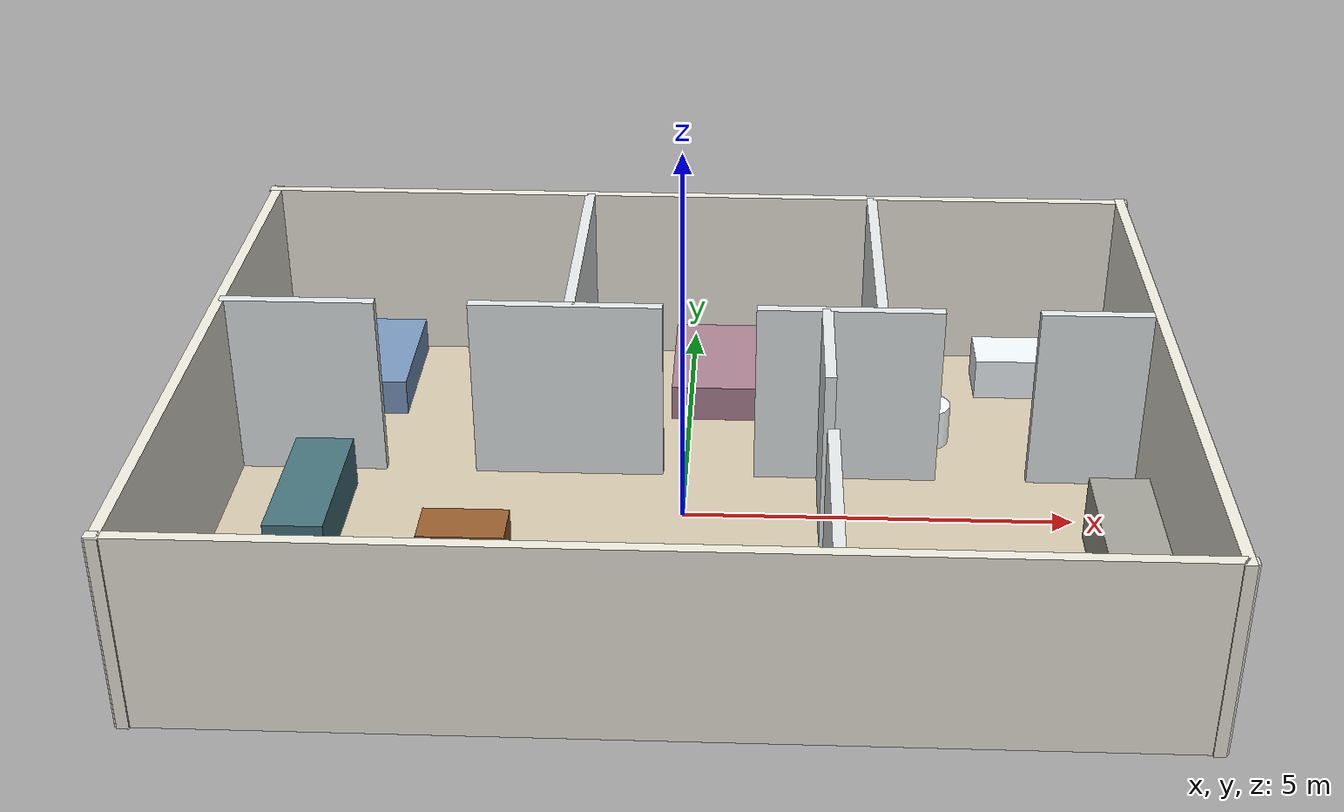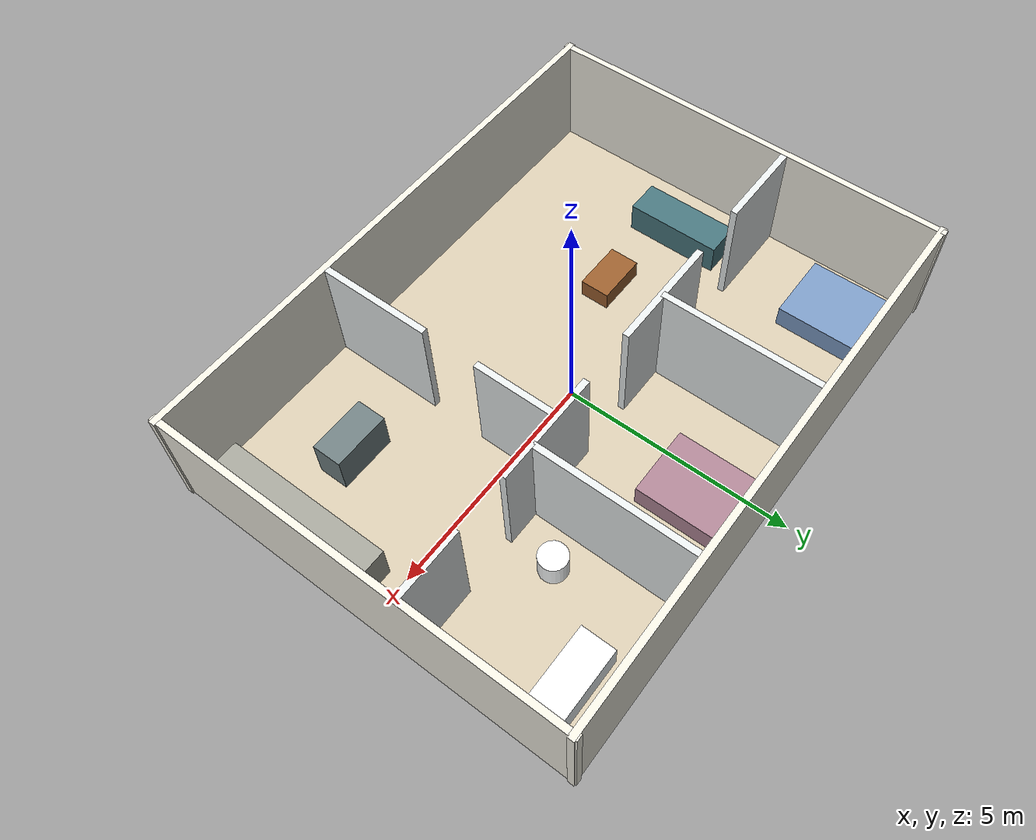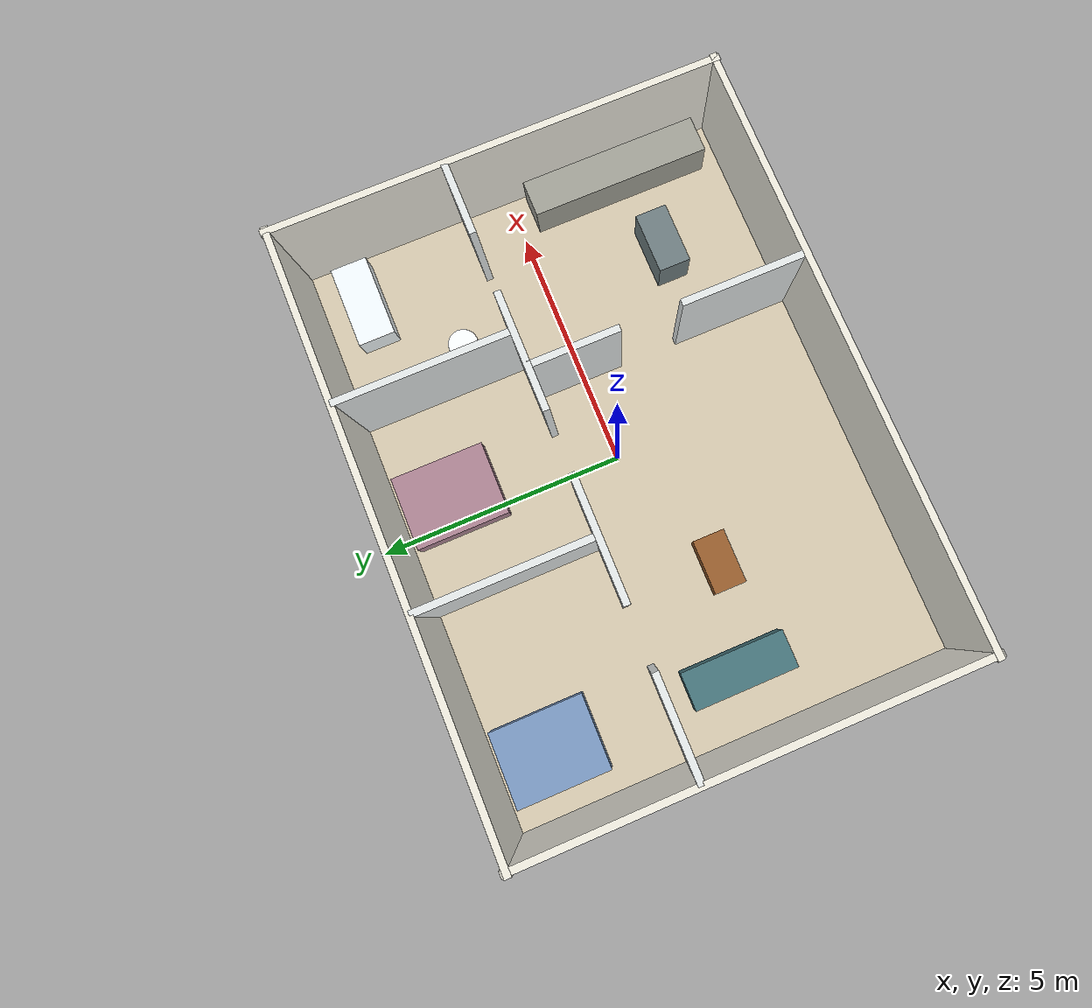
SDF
<?xml version="1.0"?>
<sdf version="1.6">
  <world name="quick_indoor_apartment">
    <include><uri>model://sun</uri></include>

    <physics name="ode_physics" default="1" type="ode">
      <max_step_size>0.001</max_step_size>
      <real_time_factor>1.0</real_time_factor>
      <real_time_update_rate>1000</real_time_update_rate>
    </physics>

    <scene>
      <ambient>0.72 0.72 0.72 1</ambient>
      <background>0.82 0.88 0.93 1</background>
      <shadows>true</shadows>
    </scene>

    <light name="home_fill" type="point">
      <pose>0 0 3.0 0 0 0</pose>
      <diffuse>1.0 0.94 0.84 1</diffuse>
      <specular>0.2 0.2 0.2 1</specular>
      <attenuation><range>14</range><constant>0.55</constant><linear>0.02</linear><quadratic>0.006</quadratic></attenuation>
    </light>

    <model name="quick_home">
      <static>true</static>

      <link name="floor">
        <pose>0 0 0 0 0 0</pose>
        <collision name="collision"><geometry><box><size>12 9 0.04</size></box></geometry></collision>
        <visual name="visual"><geometry><box><size>12 9 0.04</size></box></geometry><material><ambient>0.72 0.67 0.58 1</ambient><diffuse>0.84 0.79 0.69 1</diffuse></material></visual>
      </link>

      <!-- Outer shell. -->
      <link name="wall_n"><pose>0 4.5 1.25 0 0 0</pose><collision name="collision"><geometry><box><size>12.2 0.14 2.5</size></box></geometry></collision><visual name="visual"><geometry><box><size>12.2 0.14 2.5</size></box></geometry><material><ambient>0.84 0.83 0.78 1</ambient><diffuse>0.94 0.93 0.88 1</diffuse></material></visual></link>
      <link name="wall_s"><pose>0 -4.5 1.25 0 0 0</pose><collision name="collision"><geometry><box><size>12.2 0.14 2.5</size></box></geometry></collision><visual name="visual"><geometry><box><size>12.2 0.14 2.5</size></box></geometry><material><ambient>0.84 0.83 0.78 1</ambient><diffuse>0.94 0.93 0.88 1</diffuse></material></visual></link>
      <link name="wall_w"><pose>-6 0 1.25 0 0 0</pose><collision name="collision"><geometry><box><size>0.14 9.2 2.5</size></box></geometry></collision><visual name="visual"><geometry><box><size>0.14 9.2 2.5</size></box></geometry><material><ambient>0.84 0.83 0.78 1</ambient><diffuse>0.94 0.93 0.88 1</diffuse></material></visual></link>
      <link name="wall_e"><pose>6 0 1.25 0 0 0</pose><collision name="collision"><geometry><box><size>0.14 9.2 2.5</size></box></geometry></collision><visual name="visual"><geometry><box><size>0.14 9.2 2.5</size></box></geometry><material><ambient>0.84 0.83 0.78 1</ambient><diffuse>0.94 0.93 0.88 1</diffuse></material></visual></link>

      <!-- Wide 1.2 m door openings into both bedrooms and the bathroom. -->
      <link name="north_split_1"><pose>-5.0 1.0 1.25 0 0 0</pose><collision name="collision"><geometry><box><size>2.0 0.14 2.5</size></box></geometry></collision><visual name="visual"><geometry><box><size>2.0 0.14 2.5</size></box></geometry><material><ambient>0.80 0.82 0.82 1</ambient><diffuse>0.90 0.92 0.92 1</diffuse></material></visual></link>
      <link name="north_split_2"><pose>-1.55 1.0 1.25 0 0 0</pose><collision name="collision"><geometry><box><size>2.5 0.14 2.5</size></box></geometry></collision><visual name="visual"><geometry><box><size>2.5 0.14 2.5</size></box></geometry><material><ambient>0.80 0.82 0.82 1</ambient><diffuse>0.90 0.92 0.92 1</diffuse></material></visual></link>
      <link name="north_split_3"><pose>2.1 1.0 1.25 0 0 0</pose><collision name="collision"><geometry><box><size>2.4 0.14 2.5</size></box></geometry></collision><visual name="visual"><geometry><box><size>2.4 0.14 2.5</size></box></geometry><material><ambient>0.80 0.82 0.82 1</ambient><diffuse>0.90 0.92 0.92 1</diffuse></material></visual></link>
      <link name="north_split_4"><pose>5.25 1.0 1.25 0 0 0</pose><collision name="collision"><geometry><box><size>1.5 0.14 2.5</size></box></geometry></collision><visual name="visual"><geometry><box><size>1.5 0.14 2.5</size></box></geometry><material><ambient>0.80 0.82 0.82 1</ambient><diffuse>0.90 0.92 0.92 1</diffuse></material></visual></link>
      <link name="bedroom_split"><pose>-1.5 2.75 1.25 0 0 0</pose><collision name="collision"><geometry><box><size>0.14 3.5 2.5</size></box></geometry></collision><visual name="visual"><geometry><box><size>0.14 3.5 2.5</size></box></geometry><material><ambient>0.80 0.82 0.82 1</ambient><diffuse>0.90 0.92 0.92 1</diffuse></material></visual></link>
      <link name="bath_split"><pose>2.5 2.75 1.25 0 0 0</pose><collision name="collision"><geometry><box><size>0.14 3.5 2.5</size></box></geometry></collision><visual name="visual"><geometry><box><size>0.14 3.5 2.5</size></box></geometry><material><ambient>0.80 0.82 0.82 1</ambient><diffuse>0.90 0.92 0.92 1</diffuse></material></visual></link>

      <!-- Kitchen divider with a wide doorway. -->
      <link name="kitchen_split_s"><pose>1.8 -3.25 1.25 0 0 0</pose><collision name="collision"><geometry><box><size>0.14 2.5 2.5</size></box></geometry></collision><visual name="visual"><geometry><box><size>0.14 2.5 2.5</size></box></geometry><material><ambient>0.80 0.82 0.82 1</ambient><diffuse>0.90 0.92 0.92 1</diffuse></material></visual></link>
      <link name="kitchen_split_n"><pose>1.8 0.1 1.25 0 0 0</pose><collision name="collision"><geometry><box><size>0.14 1.8 2.5</size></box></geometry></collision><visual name="visual"><geometry><box><size>0.14 1.8 2.5</size></box></geometry><material><ambient>0.80 0.82 0.82 1</ambient><diffuse>0.90 0.92 0.92 1</diffuse></material></visual></link>

      <!-- Sparse furniture leaves broad routes for quick algorithm checks. -->
      <link name="bed_one"><pose>-4.7 3.35 0.28 0 0 0</pose><collision name="collision"><geometry><box><size>1.5 1.9 0.5</size></box></geometry></collision><visual name="visual"><geometry><box><size>1.5 1.9 0.5</size></box></geometry><material><ambient>0.38 0.48 0.62 1</ambient><diffuse>0.48 0.60 0.76 1</diffuse></material></visual></link>
      <link name="bed_two"><pose>0.5 3.35 0.28 0 0 0</pose><collision name="collision"><geometry><box><size>1.5 1.9 0.5</size></box></geometry></collision><visual name="visual"><geometry><box><size>1.5 1.9 0.5</size></box></geometry><material><ambient>0.55 0.42 0.46 1</ambient><diffuse>0.68 0.52 0.58 1</diffuse></material></visual></link>
      <link name="sofa"><pose>-4.7 -0.5 0.36 0 0 1.5708</pose><collision name="collision"><geometry><box><size>2.1 0.75 0.7</size></box></geometry></collision><visual name="visual"><geometry><box><size>2.1 0.75 0.7</size></box></geometry><material><ambient>0.20 0.34 0.36 1</ambient><diffuse>0.28 0.46 0.49 1</diffuse></material></visual></link>
      <link name="coffee_table"><pose>-2.7 -1.0 0.24 0 0 0</pose><collision name="collision"><geometry><box><size>1.1 0.65 0.42</size></box></geometry></collision><visual name="visual"><geometry><box><size>1.1 0.65 0.42</size></box></geometry><material><ambient>0.45 0.27 0.13 1</ambient><diffuse>0.60 0.37 0.18 1</diffuse></material></visual></link>
      <link name="kitchen_counter"><pose>5.45 -2.2 0.45 0 0 0</pose><collision name="collision"><geometry><box><size>0.75 3.7 0.9</size></box></geometry></collision><visual name="visual"><geometry><box><size>0.75 3.7 0.9</size></box></geometry><material><ambient>0.50 0.50 0.47 1</ambient><diffuse>0.64 0.64 0.60 1</diffuse></material></visual></link>
      <link name="kitchen_island"><pose>3.65 -2.5 0.45 0 0 0</pose><collision name="collision"><geometry><box><size>1.25 0.65 0.9</size></box></geometry></collision><visual name="visual"><geometry><box><size>1.25 0.65 0.9</size></box></geometry><material><ambient>0.32 0.37 0.38 1</ambient><diffuse>0.44 0.50 0.51 1</diffuse></material></visual></link>
      <link name="bathtub"><pose>4.85 3.55 0.32 0 0 0</pose><collision name="collision"><geometry><box><size>1.7 0.75 0.58</size></box></geometry></collision><visual name="visual"><geometry><box><size>1.7 0.75 0.58</size></box></geometry><material><ambient>0.82 0.86 0.87 1</ambient><diffuse>0.96 0.99 1.0 1</diffuse></material></visual></link>
      <link name="toilet"><pose>3.25 2.0 0.30 0 0 0</pose><collision name="collision"><geometry><cylinder><radius>0.3</radius><length>0.55</length></cylinder></geometry></collision><visual name="visual"><geometry><cylinder><radius>0.3</radius><length>0.55</length></cylinder></geometry><material><ambient>0.88 0.90 0.90 1</ambient><diffuse>0.99 1.0 1.0 1</diffuse></material></visual></link>
    </model>
  </world>
</sdf>
